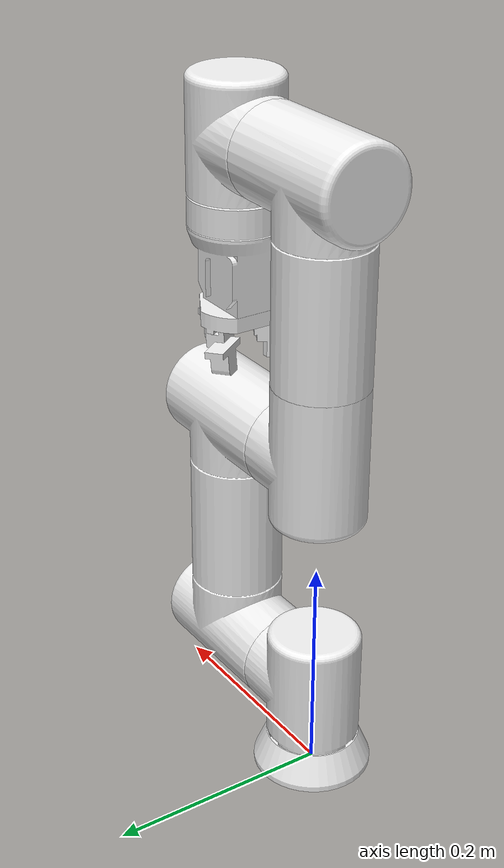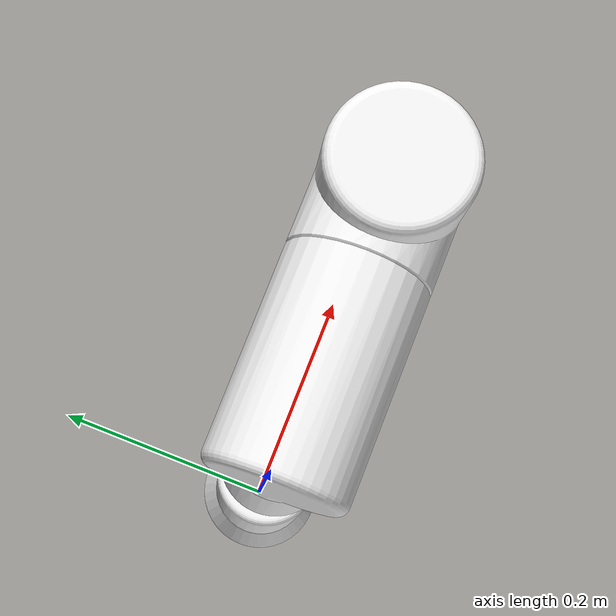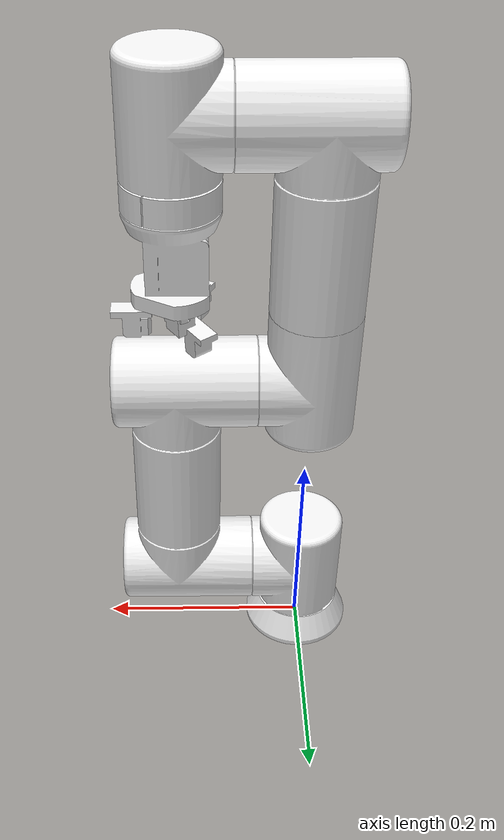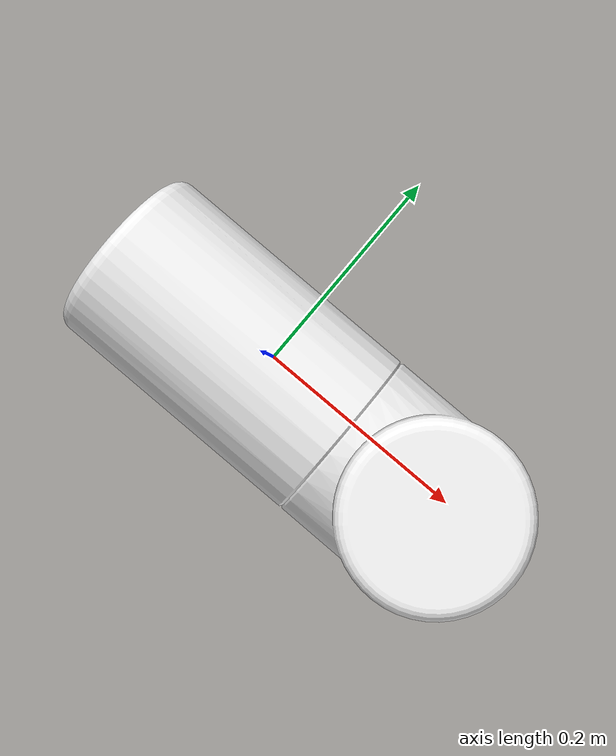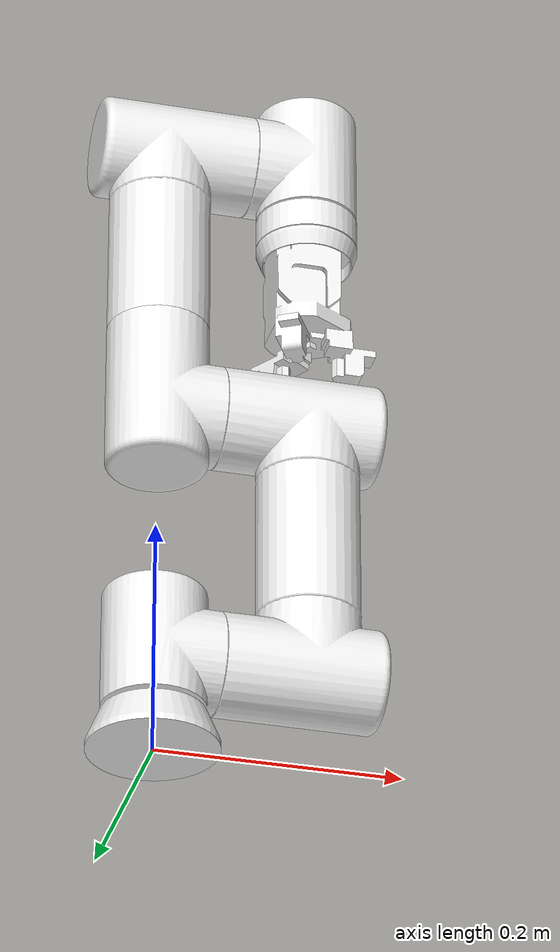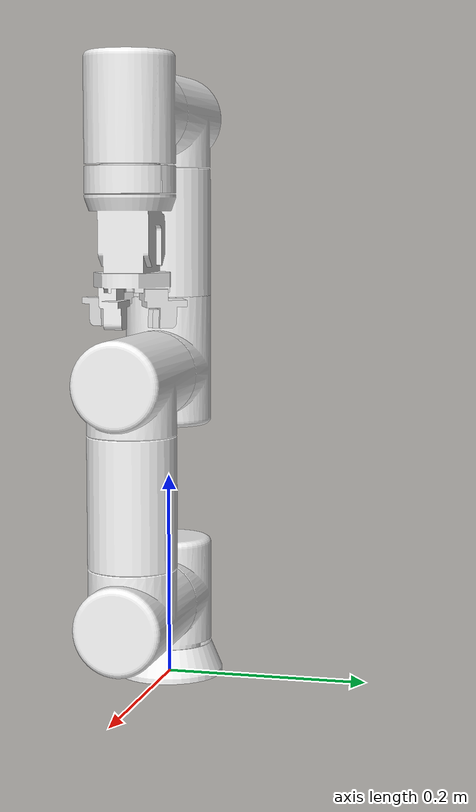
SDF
<sdf version='1.9'>
  <model name='pro_arm_6dof_550_cge_1010_40'>
    <joint name='pro_arm_base_joint' type='fixed'>
      <pose relative_to='__model__'>0 0 0 0 0 0</pose>
      <parent>world</parent>
      <child>pro_arm_base_link</child>
    </joint>
    <link name='pro_arm_base_link'>
      <pose relative_to='pro_arm_base_joint'>0 0 0 0 0 0</pose>
      <inertial>
        <pose>0 0 0.008527099999999999 0 0 0</pose>
        <mass>0.22159999999999999</mass>
        <inertia>
          <ixx>0.00030097920000000001</ixx>
          <ixy>0</ixy>
          <ixz>0</ixz>
          <iyy>0.00030097905000000001</iyy>
          <iyz>0</iyz>
          <izz>0.00052259699999999997</izz>
        </inertia>
      </inertial>
      <collision name='pro_arm_base_link_collision'>
        <pose>0 0 0 0 0 0</pose>
        <geometry>
          <mesh>
            <scale>1 1 1</scale>
            <uri>meshes_550/pro_arm_base_link.STL</uri>
          </mesh>
        </geometry>
        <surface>
          <contact>
            <ode/>
          </contact>
          <friction>
            <ode>
              <mu>0.29999999999999999</mu>
              <mu2>0.29999999999999999</mu2>
            </ode>
          </friction>
        </surface>
      </collision>
      <visual name='pro_arm_base_link_visual'>
        <pose>0 0 0 0 0 0</pose>
        <geometry>
          <mesh>
            <scale>1 1 1</scale>
            <uri>meshes_550/pro_arm_base_link.STL</uri>
          </mesh>
        </geometry>
        <material>
          <diffuse>0.941175 0.941175 0.941175 1</diffuse>
          <ambient>0.941175 0.941175 0.941175 1</ambient>
        </material>
      </visual>
    </link>
    <joint name='pro_arm_joint_1' type='revolute'>
      <pose relative_to='pro_arm_base_link'>0 0 0.0065 1.5708 0 0</pose>
      <parent>pro_arm_base_link</parent>
      <child>pro_arm_link_1</child>
      <axis>
        <xyz>0 -1 0</xyz>
        <limit>
          <lower>-3.1415926535897931</lower>
          <upper>3.1415926535897931</upper>
          <effort>54</effort>
          <velocity>1.5700000000000001</velocity>
        </limit>
        <dynamics>
          <damping>0.10000000000000001</damping>
          <friction>0.5</friction>
          <spring_reference>0</spring_reference>
          <spring_stiffness>0</spring_stiffness>
        </dynamics>
      </axis>
      <physics>
        <ode>
          <limit>
            <cfm>0</cfm>
            <erp>0.20000000000000001</erp>
          </limit>
        </ode>
      </physics>
    </joint>
    <link name='pro_arm_link_1'>
      <pose relative_to='pro_arm_joint_1'>0 0 0 0 0 0</pose>
      <inertial>
        <pose>0.0015087 0.053109 1.198e-05 0 0 0</pose>
        <mass>1.6993</mass>
        <inertia>
          <ixx>0.0020534559999999999</ixx>
          <ixy>5.3409940000000001e-05</ixy>
          <ixz>-1.063635e-07</ixz>
          <iyy>0.00039976040000000001</iyy>
          <iyz>1.226822e-06</iyz>
          <izz>0.0020773089999999998</izz>
        </inertia>
      </inertial>
      <collision name='pro_arm_link_1_collision'>
        <pose>0 0 0 0 0 0</pose>
        <geometry>
          <mesh>
            <scale>1 1 1</scale>
            <uri>meshes_550/pro_arm_link_1.STL</uri>
          </mesh>
        </geometry>
        <surface>
          <contact>
            <ode/>
          </contact>
          <friction>
            <ode>
              <mu>0.29999999999999999</mu>
              <mu2>0.29999999999999999</mu2>
            </ode>
          </friction>
        </surface>
      </collision>
      <visual name='pro_arm_link_1_visual'>
        <pose>0 0 0 0 0 0</pose>
        <geometry>
          <mesh>
            <scale>1 1 1</scale>
            <uri>meshes_550/pro_arm_link_1.STL</uri>
          </mesh>
        </geometry>
        <material>
          <diffuse>0.941175 0.941175 0.941175 1</diffuse>
          <ambient>0.941175 0.941175 0.941175 1</ambient>
        </material>
      </visual>
    </link>
    <joint name='pro_arm_joint_2' type='revolute'>
      <pose relative_to='pro_arm_link_1'>0.070003 0.075 0 0 0 0</pose>
      <parent>pro_arm_link_1</parent>
      <child>pro_arm_link_2</child>
      <axis>
        <xyz>-1 0 0</xyz>
        <limit>
          <lower>-3.1415926535897931</lower>
          <upper>3.1415926535897931</upper>
          <effort>54</effort>
          <velocity>1.5700000000000001</velocity>
        </limit>
        <dynamics>
          <damping>0.10000000000000001</damping>
          <friction>0.5</friction>
          <spring_reference>0</spring_reference>
          <spring_stiffness>0</spring_stiffness>
        </dynamics>
      </axis>
      <physics>
        <ode>
          <limit>
            <cfm>0</cfm>
            <erp>0.20000000000000001</erp>
          </limit>
        </ode>
      </physics>
    </joint>
    <link name='pro_arm_link_2'>
      <pose relative_to='pro_arm_joint_2'>0 0 0 0 0 0</pose>
      <inertial>
        <pose>0.0343 0.1125 0 0 0 0</pose>
        <mass>3.5613999999999999</mass>
        <inertia>
          <ixx>0.0053897177999999999</ixx>
          <ixy>-8.4792365000000003e-09</ixy>
          <ixz>4.7270229999999999e-12</ixz>
          <iyy>0.0013406068000000001</iyy>
          <iyz>-1.101468e-07</iyz>
          <izz>0.0059820743999999997</izz>
        </inertia>
      </inertial>
      <collision name='pro_arm_link_2_collision'>
        <pose>0 0 0 0 0 0</pose>
        <geometry>
          <mesh>
            <scale>1 1 1</scale>
            <uri>meshes_550/pro_arm_link_2.STL</uri>
          </mesh>
        </geometry>
        <surface>
          <contact>
            <ode/>
          </contact>
          <friction>
            <ode>
              <mu>0.29999999999999999</mu>
              <mu2>0.29999999999999999</mu2>
            </ode>
          </friction>
        </surface>
      </collision>
      <visual name='pro_arm_link_2_visual'>
        <pose>0 0 0 0 0 0</pose>
        <geometry>
          <mesh>
            <scale>1 1 1</scale>
            <uri>meshes_550/pro_arm_link_2.STL</uri>
          </mesh>
        </geometry>
        <material>
          <diffuse>0.941175 0.941175 0.941175 1</diffuse>
          <ambient>0.941175 0.941175 0.941175 1</ambient>
        </material>
      </visual>
    </link>
    <joint name='pro_arm_joint_3' type='revolute'>
      <pose relative_to='pro_arm_link_2'>-0.033961 0.225 0 0 0 0</pose>
      <parent>pro_arm_link_2</parent>
      <child>pro_arm_link_3</child>
      <axis>
        <xyz>1 0 0</xyz>
        <limit>
          <lower>-3.1415926535897931</lower>
          <upper>3.1415926535897931</upper>
          <effort>54</effort>
          <velocity>1.5700000000000001</velocity>
        </limit>
        <dynamics>
          <damping>0.10000000000000001</damping>
          <friction>0.5</friction>
          <spring_reference>0</spring_reference>
          <spring_stiffness>0</spring_stiffness>
        </dynamics>
      </axis>
      <physics>
        <ode>
          <limit>
            <cfm>0</cfm>
            <erp>0.20000000000000001</erp>
          </limit>
        </ode>
      </physics>
    </joint>
    <link name='pro_arm_link_3'>
      <pose relative_to='pro_arm_joint_3'>0 0 0 0 0 0</pose>
      <inertial>
        <pose>-0.0303 0.0202 0 0 0 0</pose>
        <mass>1.1577</mass>
        <inertia>
          <ixx>0.001032334</ixx>
          <ixy>1.182794e-05</ixy>
          <ixz>2.1442449999999998e-12</ixz>
          <iyy>0.00061541160000000005</iyy>
          <iyz>4.1501509999999998e-13</iyz>
          <izz>0.0010763719999999999</izz>
        </inertia>
      </inertial>
      <collision name='pro_arm_link_3_collision'>
        <pose>0 0 0 0 0 0</pose>
        <geometry>
          <mesh>
            <scale>1 1 1</scale>
            <uri>meshes_550/pro_arm_link_3.STL</uri>
          </mesh>
        </geometry>
        <surface>
          <contact>
            <ode/>
          </contact>
          <friction>
            <ode>
              <mu>0.29999999999999999</mu>
              <mu2>0.29999999999999999</mu2>
            </ode>
          </friction>
        </surface>
      </collision>
      <visual name='pro_arm_link_3_visual'>
        <pose>0 0 0 0 0 0</pose>
        <geometry>
          <mesh>
            <scale>1 1 1</scale>
            <uri>meshes_550/pro_arm_link_3.STL</uri>
          </mesh>
        </geometry>
        <material>
          <diffuse>0.941175 0.941175 0.941175 1</diffuse>
          <ambient>0.941175 0.941175 0.941175 1</ambient>
        </material>
      </visual>
    </link>
    <joint name='pro_arm_joint_4' type='revolute'>
      <pose relative_to='pro_arm_link_3'>-0.036042 0.073 0 0 0 0</pose>
      <parent>pro_arm_link_3</parent>
      <child>pro_arm_link_4</child>
      <axis>
        <xyz>0 -1 0</xyz>
        <limit>
          <lower>-3.1415926535897931</lower>
          <upper>3.1415926535897931</upper>
          <effort>19</effort>
          <velocity>1.3100000000000001</velocity>
        </limit>
        <dynamics>
          <damping>0.10000000000000001</damping>
          <friction>0.5</friction>
          <spring_reference>0</spring_reference>
          <spring_stiffness>0</spring_stiffness>
        </dynamics>
      </axis>
      <physics>
        <ode>
          <limit>
            <cfm>0</cfm>
            <erp>0.20000000000000001</erp>
          </limit>
        </ode>
      </physics>
    </joint>
    <link name='pro_arm_link_4'>
      <pose relative_to='pro_arm_joint_4'>0 0 0 0 0 0</pose>
      <inertial>
        <pose>0.00775 0.135 7.6e-07 0 0 0</pose>
        <mass>1.325</mass>
        <inertia>
          <ixx>0.0025807422000000001</ixx>
          <ixy>-0.00012371999</ixy>
          <ixz>-7.7110450999999998e-09</ixz>
          <iyy>0.0010628242</iyy>
          <iyz>1.4948952000000002e-08</iyz>
          <izz>0.0029577733</izz>
        </inertia>
      </inertial>
      <collision name='pro_arm_link_4_collision'>
        <pose>0 0 0 0 0 0</pose>
        <geometry>
          <mesh>
            <scale>1 1 1</scale>
            <uri>meshes_550/pro_arm_link_4.STL</uri>
          </mesh>
        </geometry>
        <surface>
          <contact>
            <ode/>
          </contact>
          <friction>
            <ode>
              <mu>0.29999999999999999</mu>
              <mu2>0.29999999999999999</mu2>
            </ode>
          </friction>
        </surface>
      </collision>
      <visual name='pro_arm_link_4_visual'>
        <pose>0 0 0 0 0 0</pose>
        <geometry>
          <mesh>
            <scale>1 1 1</scale>
            <uri>meshes_550/pro_arm_link_4.STL</uri>
          </mesh>
        </geometry>
        <material>
          <diffuse>0.941175 0.941175 0.941175 1</diffuse>
          <ambient>0.941175 0.941175 0.941175 1</ambient>
        </material>
      </visual>
    </link>
    <joint name='pro_arm_joint_5' type='revolute'>
      <pose relative_to='pro_arm_link_4'>0.088958 0.175 0 0 0 0</pose>
      <parent>pro_arm_link_4</parent>
      <child>pro_arm_link_5</child>
      <axis>
        <xyz>-1 0 0</xyz>
        <limit>
          <lower>-3.1415926535897931</lower>
          <upper>3.1415926535897931</upper>
          <effort>19</effort>
          <velocity>1.3100000000000001</velocity>
        </limit>
        <dynamics>
          <damping>0.10000000000000001</damping>
          <friction>0.5</friction>
          <spring_reference>0</spring_reference>
          <spring_stiffness>0</spring_stiffness>
        </dynamics>
      </axis>
      <physics>
        <ode>
          <limit>
            <cfm>0</cfm>
            <erp>0.20000000000000001</erp>
          </limit>
        </ode>
      </physics>
    </joint>
    <link name='pro_arm_link_5'>
      <pose relative_to='pro_arm_joint_5'>0 0 0 0 0 0</pose>
      <inertial>
        <pose>0.0305 -0.00616 0 0 0 0</pose>
        <mass>1.1577</mass>
        <inertia>
          <ixx>0.00094404410000000004</ixx>
          <ixy>1.5195579999999999e-05</ixy>
          <ixz>4.9237369999999997e-12</ixz>
          <iyy>0.00059232063</iyy>
          <iyz>1.4920415000000001e-13</iyz>
          <izz>0.00099105549999999997</izz>
        </inertia>
      </inertial>
      <collision name='pro_arm_link_5_collision'>
        <pose>0 0 0 0 0 0</pose>
        <geometry>
          <mesh>
            <scale>1 1 1</scale>
            <uri>meshes_550/pro_arm_link_5.STL</uri>
          </mesh>
        </geometry>
        <surface>
          <contact>
            <ode/>
          </contact>
          <friction>
            <ode>
              <mu>0.29999999999999999</mu>
              <mu2>0.29999999999999999</mu2>
            </ode>
          </friction>
        </surface>
      </collision>
      <visual name='pro_arm_link_5_visual'>
        <pose>0 0 0 0 0 0</pose>
        <geometry>
          <mesh>
            <scale>1 1 1</scale>
            <uri>meshes_550/pro_arm_link_5.STL</uri>
          </mesh>
        </geometry>
        <material>
          <diffuse>0.941175 0.941175 0.941175 1</diffuse>
          <ambient>0.941175 0.941175 0.941175 1</ambient>
        </material>
      </visual>
    </link>
    <joint name='pro_arm_joint_6' type='revolute'>
      <pose relative_to='pro_arm_link_5'>0.036042 -0.049 0 0 -0.5434500000000001 0</pose>
      <parent>pro_arm_link_5</parent>
      <child>gripper</child>
      <axis>
        <xyz>0 1 0</xyz>
        <limit>
          <lower>-3.1415926535897931</lower>
          <upper>3.1415926535897931</upper>
          <effort>6.5</effort>
          <velocity>6.2830000000000004</velocity>
        </limit>
        <dynamics>
          <damping>0.01</damping>
          <friction>3.48</friction>
          <spring_reference>0</spring_reference>
          <spring_stiffness>0</spring_stiffness>
        </dynamics>
      </axis>
      <physics>
        <ode>
          <limit>
            <cfm>0</cfm>
            <erp>0.20000000000000001</erp>
          </limit>
        </ode>
      </physics>
    </joint>
    <link name='gripper'>
      <pose relative_to='pro_arm_joint_6'>0 0 0 0 0 0</pose>
      <inertial>
        <pose>3.838e-15 -0.05 0.00019576 0 0 0</pose>
        <mass>1.1577</mass>
        <inertia>
          <ixx>0.00094404410000000004</ixx>
          <ixy>1.5195579999999999e-05</ixy>
          <ixz>4.9237369999999997e-12</ixz>
          <iyy>0.00059232063</iyy>
          <iyz>1.4920415000000001e-13</iyz>
          <izz>0.00099105549999999997</izz>
        </inertia>
      </inertial>
      <collision name='gripper_collision'>
        <pose>0 0 0 0 0 0</pose>
        <geometry>
          <mesh>
            <scale>1 1 1</scale>
            <uri>grippers/cge_1010_gripper.STL</uri>
          </mesh>
        </geometry>
        <surface>
          <contact>
            <ode/>
          </contact>
          <friction>
            <ode>
              <mu>0.29999999999999999</mu>
              <mu2>0.29999999999999999</mu2>
            </ode>
          </friction>
        </surface>
      </collision>
      <visual name='gripper_visual'>
        <pose>0 0 0 0 0 0</pose>
        <geometry>
          <mesh>
            <scale>1 1 1</scale>
            <uri>grippers/cge_1010_gripper.STL</uri>
          </mesh>
        </geometry>
        <material>
          <diffuse>0.941175 0.941175 0.941175 1</diffuse>
          <ambient>0.941175 0.941175 0.941175 1</ambient>
        </material>
      </visual>
    </link>
    <joint name='joint_7' type='prismatic'>
      <pose relative_to='gripper'>-0.008999999999999999 -0.131 -0.0017677 3.1377 0 3.1377</pose>
      <parent>gripper</parent>
      <child>finger_1</child>
      <axis>
        <xyz>0 0 1</xyz>
        <limit>
          <lower>0</lower>
          <upper>0.01</upper>
          <effort>1.45</effort>
          <velocity>6.2830000000000004</velocity>
        </limit>
        <dynamics>
          <damping>0.01</damping>
          <friction>0.40000000000000002</friction>
          <spring_reference>0</spring_reference>
          <spring_stiffness>0</spring_stiffness>
        </dynamics>
      </axis>
      <physics>
        <ode>
          <limit>
            <cfm>0</cfm>
            <erp>0.20000000000000001</erp>
          </limit>
        </ode>
      </physics>
    </joint>
    <link name='finger_1'>
      <pose relative_to='joint_7'>0 0 0 0 0 0</pose>
      <inertial>
        <pose>0.0167982763420162 0.00219260624818562 0.00279849177582042 0 0 0</pose>
        <mass>0.015182988607334099</mass>
        <inertia>
          <ixx>2.0290623638340201e-06</ixx>
          <ixy>-8.2868813185937293e-08</ixy>
          <ixz>1.8524849550046501e-07</ixz>
          <iyy>1.9795888852646401e-06</iyy>
          <iyz>-3.9723937439916299e-07</iyz>
          <izz>2.7958271112893399e-06</izz>
        </inertia>
      </inertial>
      <collision name='finger_1_collision'>
        <pose>0 0 0 0 0 0</pose>
        <geometry>
          <mesh>
            <scale>1 1 1</scale>
            <uri>grippers/cge_1010_40_finger_1.STL</uri>
          </mesh>
        </geometry>
        <surface>
          <contact>
            <ode/>
          </contact>
          <friction>
            <ode>
              <mu>0.29999999999999999</mu>
              <mu2>0.29999999999999999</mu2>
            </ode>
          </friction>
        </surface>
      </collision>
      <visual name='finger_1_visual'>
        <pose>0 0 0 0 0 0</pose>
        <geometry>
          <mesh>
            <scale>1 1 1</scale>
            <uri>grippers/cge_1010_40_finger_1.STL</uri>
          </mesh>
        </geometry>
        <material>
          <diffuse>0.941175 0.941175 0.941175 1</diffuse>
          <ambient>0.941175 0.941175 0.941175 1</ambient>
        </material>
      </visual>
    </link>
    <joint name='joint_8' type='prismatic'>
      <pose relative_to='gripper'>0.010381 -0.13104 -0.0021548 0.003962800000000001 0.5434500000000001 2.533390374304562e-19</pose>
      <parent>gripper</parent>
      <child>finger_2</child>
      <axis>
        <xyz>1 0 0</xyz>
        <limit>
          <lower>-0.01</lower>
          <upper>0</upper>
          <effort>1.45</effort>
          <velocity>6.2830000000000004</velocity>
        </limit>
        <dynamics>
          <damping>0.01</damping>
          <friction>0.40000000000000002</friction>
          <spring_reference>0</spring_reference>
          <spring_stiffness>0</spring_stiffness>
        </dynamics>
      </axis>
      <physics>
        <ode>
          <limit>
            <cfm>0</cfm>
            <erp>0.20000000000000001</erp>
          </limit>
        </ode>
      </physics>
    </joint>
    <link name='finger_2'>
      <pose relative_to='joint_8'>0 0 0 0 0 0</pose>
      <inertial>
        <pose>0.0167982763420162 0.00219260624818574 0.00279849177582043 0 0 0</pose>
        <mass>0.015182988607334099</mass>
        <inertia>
          <ixx>2.0290623638340201e-06</ixx>
          <ixy>-8.2868813185935599e-08</ixy>
          <ixz>1.8524849550047099e-07</ixz>
          <iyy>1.9795888852646202e-06</iyy>
          <iyz>-3.9723937439915499e-07</iyz>
          <izz>2.7958271112893399e-06</izz>
        </inertia>
      </inertial>
      <collision name='finger_2_collision'>
        <pose>0 0 0 0 0 0</pose>
        <geometry>
          <mesh>
            <scale>1 1 1</scale>
            <uri>grippers/cge_1010_40_finger_2.STL</uri>
          </mesh>
        </geometry>
        <surface>
          <contact>
            <ode/>
          </contact>
          <friction>
            <ode>
              <mu>0.29999999999999999</mu>
              <mu2>0.29999999999999999</mu2>
            </ode>
          </friction>
        </surface>
      </collision>
      <visual name='finger_2_visual'>
        <pose>0 0 0 0 0 0</pose>
        <geometry>
          <mesh>
            <scale>1 1 1</scale>
            <uri>grippers/cge_1010_40_finger_2.STL</uri>
          </mesh>
        </geometry>
        <material>
          <diffuse>0.941175 0.941175 0.941175 1</diffuse>
          <ambient>0.941175 0.941175 0.941175 1</ambient>
        </material>
      </visual>
    </link>
    <joint name='joint_9' type='prismatic'>
      <pose relative_to='gripper'>0.0020585 -0.13107 0.013035 -2.972372653589793 -1.141592653589794 2.970352653589793</pose>
      <parent>gripper</parent>
      <child>finger_3</child>
      <axis>
        <xyz>0 0 1</xyz>
        <limit>
          <lower>-0.01</lower>
          <upper>0.01</upper>
          <effort>1.45</effort>
          <velocity>6.2830000000000004</velocity>
        </limit>
        <dynamics>
          <damping>0.01</damping>
          <friction>0.40000000000000002</friction>
          <spring_reference>0</spring_reference>
          <spring_stiffness>0</spring_stiffness>
        </dynamics>
      </axis>
      <physics>
        <ode>
          <limit>
            <cfm>0</cfm>
            <erp>0.20000000000000001</erp>
          </limit>
        </ode>
      </physics>
    </joint>
    <link name='finger_3'>
      <pose relative_to='joint_9'>0 0 0 0 0 0</pose>
      <inertial>
        <pose>0.0167982763420162 0.00219260624818568 0.00279849177582042 0 0 0</pose>
        <mass>0.015182988607334099</mass>
        <inertia>
          <ixx>2.0290623638340201e-06</ixx>
          <ixy>-8.2868813185937399e-08</ixy>
          <ixz>1.8524849550046599e-07</ixz>
          <iyy>1.9795888852646299e-06</iyy>
          <iyz>-3.9723937439916299e-07</iyz>
          <izz>2.7958271112893399e-06</izz>
        </inertia>
      </inertial>
      <collision name='finger_3_collision'>
        <pose>0 0 0 0 0 0</pose>
        <geometry>
          <mesh>
            <scale>1 1 1</scale>
            <uri>grippers/cge_1010_40_finger_3.STL</uri>
          </mesh>
        </geometry>
        <surface>
          <contact>
            <ode/>
          </contact>
          <friction>
            <ode>
              <mu>0.29999999999999999</mu>
              <mu2>0.29999999999999999</mu2>
            </ode>
          </friction>
        </surface>
      </collision>
      <visual name='finger_3_visual'>
        <pose>0 0 0 0 0 0</pose>
        <geometry>
          <mesh>
            <scale>1 1 1</scale>
            <uri>grippers/cge_1010_40_finger_3.STL</uri>
          </mesh>
        </geometry>
        <material>
          <diffuse>0.941175 0.941175 0.941175 1</diffuse>
          <ambient>0.941175 0.941175 0.941175 1</ambient>
        </material>
      </visual>
    </link>
    <plugin name='ign_ros2_control::IgnitionROS2ControlPlugin' filename='ign_ros2_control-system'>
      <parameters>/home/alankrit/SES-P-ROS2-Arms/install/pro_arm_moveit/share/pro_arm_moveit/config/controllers_6dof.yaml</parameters>
    </plugin>
    <frame name='pro_arm_ee_virtual_joint' attached_to='gripper'>
      <pose>0 -0.15 0 1.57079 -0.543593 -3.14159</pose>
    </frame>
    <frame name='pro_arm_ee' attached_to='pro_arm_ee_virtual_joint'/>
  </model>
</sdf>
